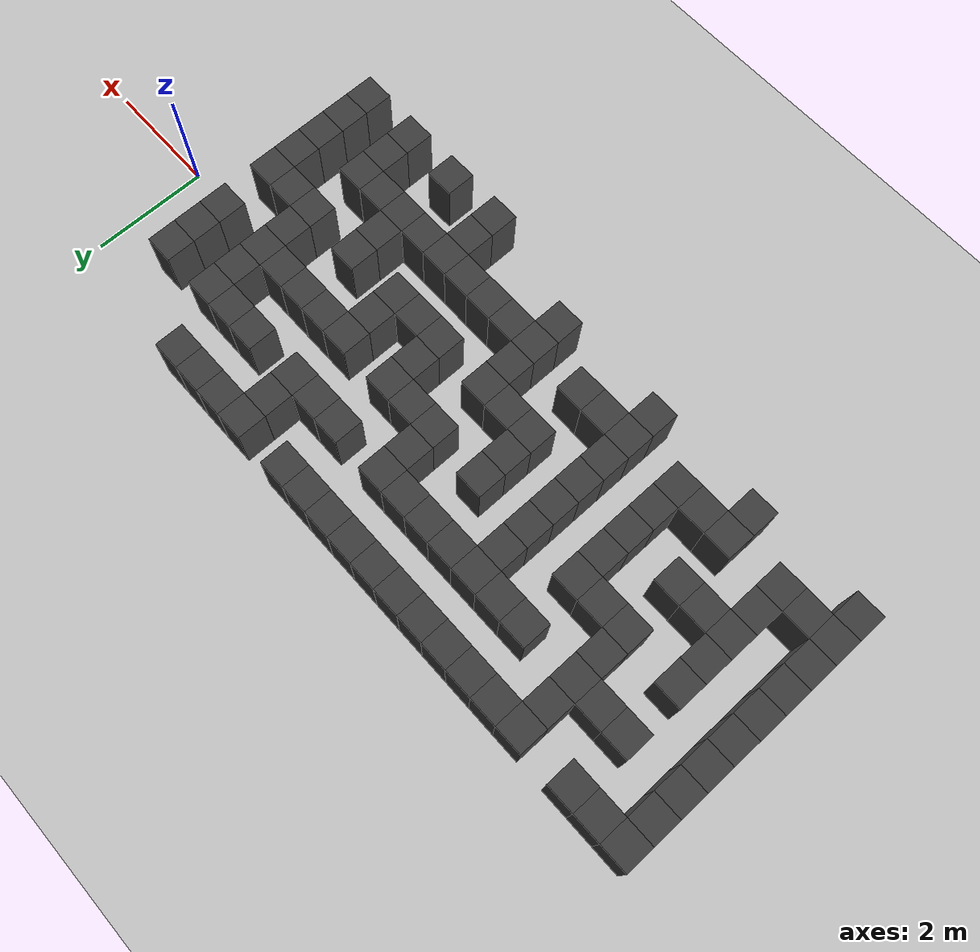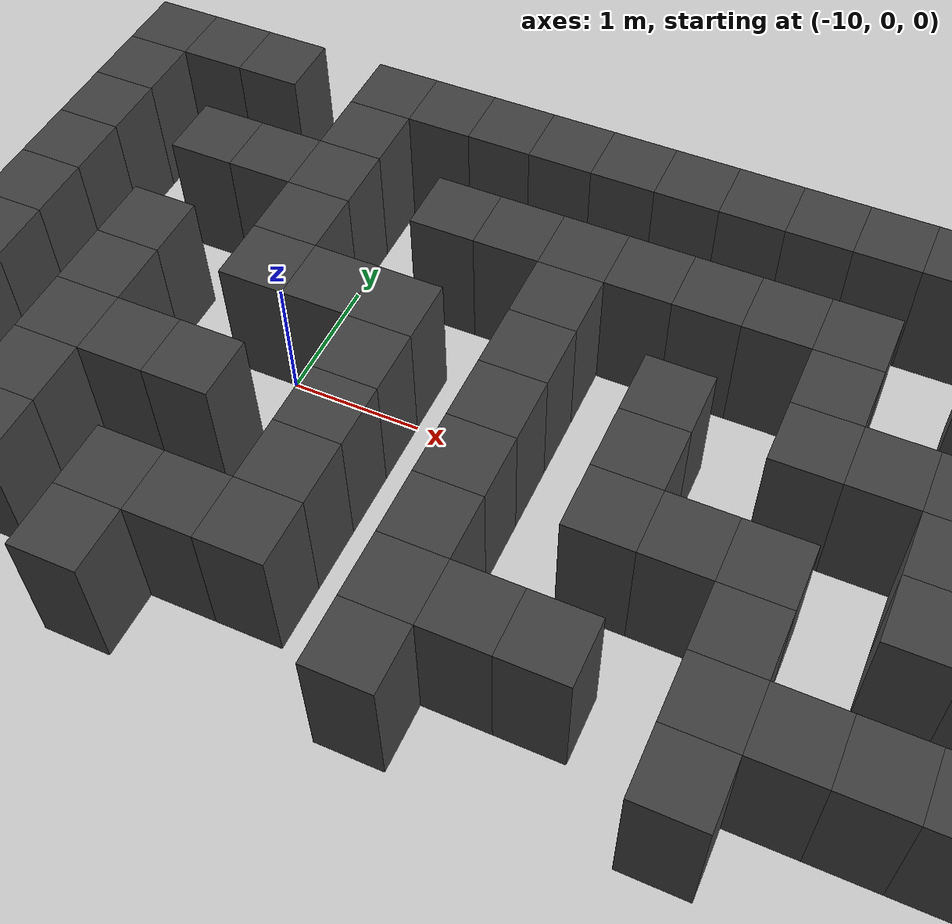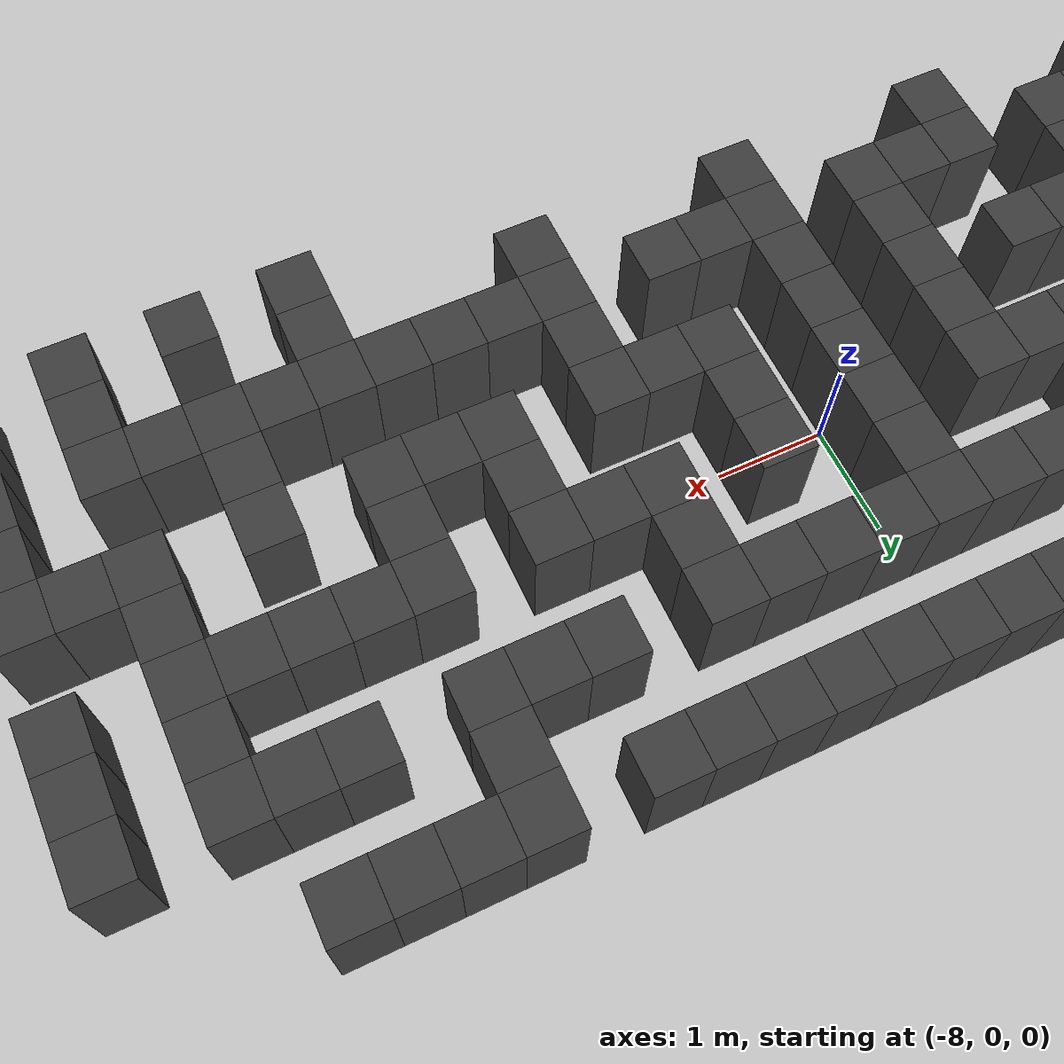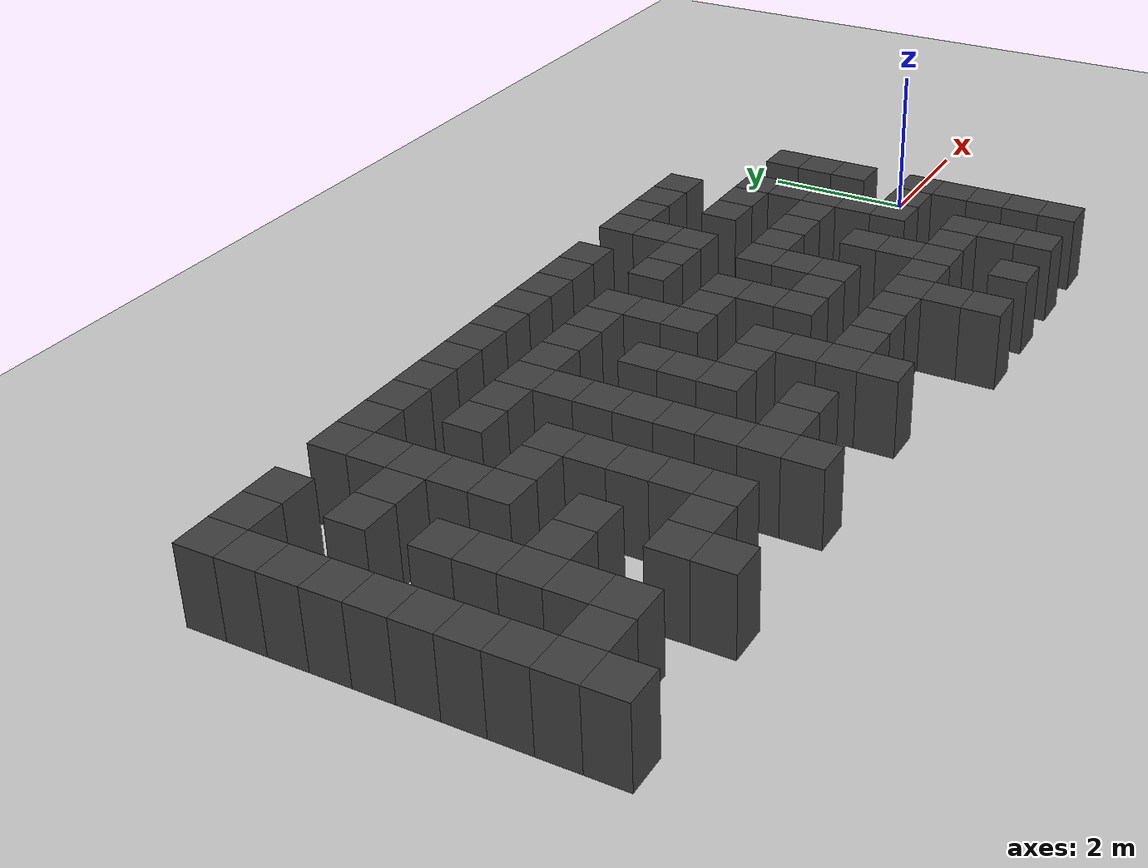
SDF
<sdf version="1.7">
 <world name="map_19815">
  <model name="ground_plane">
   <static>true</static>
   <link name="link">
    <collision name="collision">
     <geometry><plane><normal>0 0 1</normal><size>200 200</size></plane></geometry>
    </collision>
    <visual name="visual">
     <geometry><plane><normal>0 0 1</normal><size>200 200</size></plane></geometry>
     <material><ambient>0.8 0.8 0.8 1</ambient><diffuse>0.8 0.8 0.8 1</diffuse></material>
    </visual>
   </link>
  </model>
  <model name="maze_environment">
   <static>true</static>
   <link name="wall_522">
    <pose>-12.250 2.250 0.500 0 0 0</pose>
    <collision name="col"><geometry><box><size>0.5 0.5 1.0</size></box></geometry></collision>
    <visual name="vis">
     <geometry><box><size>0.5 0.5 1.0</size></box></geometry>
     <material><ambient>0.15 0.15 0.15 1</ambient><diffuse>0.25 0.25 0.25 1</diffuse></material>
    </visual>
   </link>
   <link name="wall_523">
    <pose>-11.750 2.250 0.500 0 0 0</pose>
    <collision name="col"><geometry><box><size>0.5 0.5 1.0</size></box></geometry></collision>
    <visual name="vis">
     <geometry><box><size>0.5 0.5 1.0</size></box></geometry>
     <material><ambient>0.15 0.15 0.15 1</ambient><diffuse>0.25 0.25 0.25 1</diffuse></material>
    </visual>
   </link>
   <link name="wall_524">
    <pose>-11.250 2.250 0.500 0 0 0</pose>
    <collision name="col"><geometry><box><size>0.5 0.5 1.0</size></box></geometry></collision>
    <visual name="vis">
     <geometry><box><size>0.5 0.5 1.0</size></box></geometry>
     <material><ambient>0.15 0.15 0.15 1</ambient><diffuse>0.25 0.25 0.25 1</diffuse></material>
    </visual>
   </link>
   <link name="wall_525">
    <pose>-10.250 2.250 0.500 0 0 0</pose>
    <collision name="col"><geometry><box><size>0.5 0.5 1.0</size></box></geometry></collision>
    <visual name="vis">
     <geometry><box><size>0.5 0.5 1.0</size></box></geometry>
     <material><ambient>0.15 0.15 0.15 1</ambient><diffuse>0.25 0.25 0.25 1</diffuse></material>
    </visual>
   </link>
   <link name="wall_526">
    <pose>-9.750 2.250 0.500 0 0 0</pose>
    <collision name="col"><geometry><box><size>0.5 0.5 1.0</size></box></geometry></collision>
    <visual name="vis">
     <geometry><box><size>0.5 0.5 1.0</size></box></geometry>
     <material><ambient>0.15 0.15 0.15 1</ambient><diffuse>0.25 0.25 0.25 1</diffuse></material>
    </visual>
   </link>
   <link name="wall_527">
    <pose>-9.250 2.250 0.500 0 0 0</pose>
    <collision name="col"><geometry><box><size>0.5 0.5 1.0</size></box></geometry></collision>
    <visual name="vis">
     <geometry><box><size>0.5 0.5 1.0</size></box></geometry>
     <material><ambient>0.15 0.15 0.15 1</ambient><diffuse>0.25 0.25 0.25 1</diffuse></material>
    </visual>
   </link>
   <link name="wall_528">
    <pose>-8.750 2.250 0.500 0 0 0</pose>
    <collision name="col"><geometry><box><size>0.5 0.5 1.0</size></box></geometry></collision>
    <visual name="vis">
     <geometry><box><size>0.5 0.5 1.0</size></box></geometry>
     <material><ambient>0.15 0.15 0.15 1</ambient><diffuse>0.25 0.25 0.25 1</diffuse></material>
    </visual>
   </link>
   <link name="wall_529">
    <pose>-8.250 2.250 0.500 0 0 0</pose>
    <collision name="col"><geometry><box><size>0.5 0.5 1.0</size></box></geometry></collision>
    <visual name="vis">
     <geometry><box><size>0.5 0.5 1.0</size></box></geometry>
     <material><ambient>0.15 0.15 0.15 1</ambient><diffuse>0.25 0.25 0.25 1</diffuse></material>
    </visual>
   </link>
   <link name="wall_530">
    <pose>-7.750 2.250 0.500 0 0 0</pose>
    <collision name="col"><geometry><box><size>0.5 0.5 1.0</size></box></geometry></collision>
    <visual name="vis">
     <geometry><box><size>0.5 0.5 1.0</size></box></geometry>
     <material><ambient>0.15 0.15 0.15 1</ambient><diffuse>0.25 0.25 0.25 1</diffuse></material>
    </visual>
   </link>
   <link name="wall_531">
    <pose>-7.250 2.250 0.500 0 0 0</pose>
    <collision name="col"><geometry><box><size>0.5 0.5 1.0</size></box></geometry></collision>
    <visual name="vis">
     <geometry><box><size>0.5 0.5 1.0</size></box></geometry>
     <material><ambient>0.15 0.15 0.15 1</ambient><diffuse>0.25 0.25 0.25 1</diffuse></material>
    </visual>
   </link>
   <link name="wall_532">
    <pose>-6.750 2.250 0.500 0 0 0</pose>
    <collision name="col"><geometry><box><size>0.5 0.5 1.0</size></box></geometry></collision>
    <visual name="vis">
     <geometry><box><size>0.5 0.5 1.0</size></box></geometry>
     <material><ambient>0.15 0.15 0.15 1</ambient><diffuse>0.25 0.25 0.25 1</diffuse></material>
    </visual>
   </link>
   <link name="wall_533">
    <pose>-6.250 2.250 0.500 0 0 0</pose>
    <collision name="col"><geometry><box><size>0.5 0.5 1.0</size></box></geometry></collision>
    <visual name="vis">
     <geometry><box><size>0.5 0.5 1.0</size></box></geometry>
     <material><ambient>0.15 0.15 0.15 1</ambient><diffuse>0.25 0.25 0.25 1</diffuse></material>
    </visual>
   </link>
   <link name="wall_534">
    <pose>-5.750 2.250 0.500 0 0 0</pose>
    <collision name="col"><geometry><box><size>0.5 0.5 1.0</size></box></geometry></collision>
    <visual name="vis">
     <geometry><box><size>0.5 0.5 1.0</size></box></geometry>
     <material><ambient>0.15 0.15 0.15 1</ambient><diffuse>0.25 0.25 0.25 1</diffuse></material>
    </visual>
   </link>
   <link name="wall_535">
    <pose>-5.250 2.250 0.500 0 0 0</pose>
    <collision name="col"><geometry><box><size>0.5 0.5 1.0</size></box></geometry></collision>
    <visual name="vis">
     <geometry><box><size>0.5 0.5 1.0</size></box></geometry>
     <material><ambient>0.15 0.15 0.15 1</ambient><diffuse>0.25 0.25 0.25 1</diffuse></material>
    </visual>
   </link>
   <link name="wall_536">
    <pose>-4.250 2.250 0.500 0 0 0</pose>
    <collision name="col"><geometry><box><size>0.5 0.5 1.0</size></box></geometry></collision>
    <visual name="vis">
     <geometry><box><size>0.5 0.5 1.0</size></box></geometry>
     <material><ambient>0.15 0.15 0.15 1</ambient><diffuse>0.25 0.25 0.25 1</diffuse></material>
    </visual>
   </link>
   <link name="wall_537">
    <pose>-3.750 2.250 0.500 0 0 0</pose>
    <collision name="col"><geometry><box><size>0.5 0.5 1.0</size></box></geometry></collision>
    <visual name="vis">
     <geometry><box><size>0.5 0.5 1.0</size></box></geometry>
     <material><ambient>0.15 0.15 0.15 1</ambient><diffuse>0.25 0.25 0.25 1</diffuse></material>
    </visual>
   </link>
   <link name="wall_538">
    <pose>-3.250 2.250 0.500 0 0 0</pose>
    <collision name="col"><geometry><box><size>0.5 0.5 1.0</size></box></geometry></collision>
    <visual name="vis">
     <geometry><box><size>0.5 0.5 1.0</size></box></geometry>
     <material><ambient>0.15 0.15 0.15 1</ambient><diffuse>0.25 0.25 0.25 1</diffuse></material>
    </visual>
   </link>
   <link name="wall_539">
    <pose>-2.750 2.250 0.500 0 0 0</pose>
    <collision name="col"><geometry><box><size>0.5 0.5 1.0</size></box></geometry></collision>
    <visual name="vis">
     <geometry><box><size>0.5 0.5 1.0</size></box></geometry>
     <material><ambient>0.15 0.15 0.15 1</ambient><diffuse>0.25 0.25 0.25 1</diffuse></material>
    </visual>
   </link>
   <link name="wall_563">
    <pose>-12.250 1.750 0.500 0 0 0</pose>
    <collision name="col"><geometry><box><size>0.5 0.5 1.0</size></box></geometry></collision>
    <visual name="vis">
     <geometry><box><size>0.5 0.5 1.0</size></box></geometry>
     <material><ambient>0.15 0.15 0.15 1</ambient><diffuse>0.25 0.25 0.25 1</diffuse></material>
    </visual>
   </link>
   <link name="wall_564">
    <pose>-10.250 1.750 0.500 0 0 0</pose>
    <collision name="col"><geometry><box><size>0.5 0.5 1.0</size></box></geometry></collision>
    <visual name="vis">
     <geometry><box><size>0.5 0.5 1.0</size></box></geometry>
     <material><ambient>0.15 0.15 0.15 1</ambient><diffuse>0.25 0.25 0.25 1</diffuse></material>
    </visual>
   </link>
   <link name="wall_565">
    <pose>-4.250 1.750 0.500 0 0 0</pose>
    <collision name="col"><geometry><box><size>0.5 0.5 1.0</size></box></geometry></collision>
    <visual name="vis">
     <geometry><box><size>0.5 0.5 1.0</size></box></geometry>
     <material><ambient>0.15 0.15 0.15 1</ambient><diffuse>0.25 0.25 0.25 1</diffuse></material>
    </visual>
   </link>
   <link name="wall_574">
    <pose>-12.250 1.250 0.500 0 0 0</pose>
    <collision name="col"><geometry><box><size>0.5 0.5 1.0</size></box></geometry></collision>
    <visual name="vis">
     <geometry><box><size>0.5 0.5 1.0</size></box></geometry>
     <material><ambient>0.15 0.15 0.15 1</ambient><diffuse>0.25 0.25 0.25 1</diffuse></material>
    </visual>
   </link>
   <link name="wall_575">
    <pose>-11.250 1.250 0.500 0 0 0</pose>
    <collision name="col"><geometry><box><size>0.5 0.5 1.0</size></box></geometry></collision>
    <visual name="vis">
     <geometry><box><size>0.5 0.5 1.0</size></box></geometry>
     <material><ambient>0.15 0.15 0.15 1</ambient><diffuse>0.25 0.25 0.25 1</diffuse></material>
    </visual>
   </link>
   <link name="wall_576">
    <pose>-10.750 1.250 0.500 0 0 0</pose>
    <collision name="col"><geometry><box><size>0.5 0.5 1.0</size></box></geometry></collision>
    <visual name="vis">
     <geometry><box><size>0.5 0.5 1.0</size></box></geometry>
     <material><ambient>0.15 0.15 0.15 1</ambient><diffuse>0.25 0.25 0.25 1</diffuse></material>
    </visual>
   </link>
   <link name="wall_577">
    <pose>-10.250 1.250 0.500 0 0 0</pose>
    <collision name="col"><geometry><box><size>0.5 0.5 1.0</size></box></geometry></collision>
    <visual name="vis">
     <geometry><box><size>0.5 0.5 1.0</size></box></geometry>
     <material><ambient>0.15 0.15 0.15 1</ambient><diffuse>0.25 0.25 0.25 1</diffuse></material>
    </visual>
   </link>
   <link name="wall_578">
    <pose>-9.250 1.250 0.500 0 0 0</pose>
    <collision name="col"><geometry><box><size>0.5 0.5 1.0</size></box></geometry></collision>
    <visual name="vis">
     <geometry><box><size>0.5 0.5 1.0</size></box></geometry>
     <material><ambient>0.15 0.15 0.15 1</ambient><diffuse>0.25 0.25 0.25 1</diffuse></material>
    </visual>
   </link>
   <link name="wall_579">
    <pose>-8.750 1.250 0.500 0 0 0</pose>
    <collision name="col"><geometry><box><size>0.5 0.5 1.0</size></box></geometry></collision>
    <visual name="vis">
     <geometry><box><size>0.5 0.5 1.0</size></box></geometry>
     <material><ambient>0.15 0.15 0.15 1</ambient><diffuse>0.25 0.25 0.25 1</diffuse></material>
    </visual>
   </link>
   <link name="wall_580">
    <pose>-8.250 1.250 0.500 0 0 0</pose>
    <collision name="col"><geometry><box><size>0.5 0.5 1.0</size></box></geometry></collision>
    <visual name="vis">
     <geometry><box><size>0.5 0.5 1.0</size></box></geometry>
     <material><ambient>0.15 0.15 0.15 1</ambient><diffuse>0.25 0.25 0.25 1</diffuse></material>
    </visual>
   </link>
   <link name="wall_581">
    <pose>-7.750 1.250 0.500 0 0 0</pose>
    <collision name="col"><geometry><box><size>0.5 0.5 1.0</size></box></geometry></collision>
    <visual name="vis">
     <geometry><box><size>0.5 0.5 1.0</size></box></geometry>
     <material><ambient>0.15 0.15 0.15 1</ambient><diffuse>0.25 0.25 0.25 1</diffuse></material>
    </visual>
   </link>
   <link name="wall_582">
    <pose>-7.250 1.250 0.500 0 0 0</pose>
    <collision name="col"><geometry><box><size>0.5 0.5 1.0</size></box></geometry></collision>
    <visual name="vis">
     <geometry><box><size>0.5 0.5 1.0</size></box></geometry>
     <material><ambient>0.15 0.15 0.15 1</ambient><diffuse>0.25 0.25 0.25 1</diffuse></material>
    </visual>
   </link>
   <link name="wall_583">
    <pose>-6.750 1.250 0.500 0 0 0</pose>
    <collision name="col"><geometry><box><size>0.5 0.5 1.0</size></box></geometry></collision>
    <visual name="vis">
     <geometry><box><size>0.5 0.5 1.0</size></box></geometry>
     <material><ambient>0.15 0.15 0.15 1</ambient><diffuse>0.25 0.25 0.25 1</diffuse></material>
    </visual>
   </link>
   <link name="wall_584">
    <pose>-6.250 1.250 0.500 0 0 0</pose>
    <collision name="col"><geometry><box><size>0.5 0.5 1.0</size></box></geometry></collision>
    <visual name="vis">
     <geometry><box><size>0.5 0.5 1.0</size></box></geometry>
     <material><ambient>0.15 0.15 0.15 1</ambient><diffuse>0.25 0.25 0.25 1</diffuse></material>
    </visual>
   </link>
   <link name="wall_585">
    <pose>-5.250 1.250 0.500 0 0 0</pose>
    <collision name="col"><geometry><box><size>0.5 0.5 1.0</size></box></geometry></collision>
    <visual name="vis">
     <geometry><box><size>0.5 0.5 1.0</size></box></geometry>
     <material><ambient>0.15 0.15 0.15 1</ambient><diffuse>0.25 0.25 0.25 1</diffuse></material>
    </visual>
   </link>
   <link name="wall_586">
    <pose>-4.750 1.250 0.500 0 0 0</pose>
    <collision name="col"><geometry><box><size>0.5 0.5 1.0</size></box></geometry></collision>
    <visual name="vis">
     <geometry><box><size>0.5 0.5 1.0</size></box></geometry>
     <material><ambient>0.15 0.15 0.15 1</ambient><diffuse>0.25 0.25 0.25 1</diffuse></material>
    </visual>
   </link>
   <link name="wall_587">
    <pose>-4.250 1.250 0.500 0 0 0</pose>
    <collision name="col"><geometry><box><size>0.5 0.5 1.0</size></box></geometry></collision>
    <visual name="vis">
     <geometry><box><size>0.5 0.5 1.0</size></box></geometry>
     <material><ambient>0.15 0.15 0.15 1</ambient><diffuse>0.25 0.25 0.25 1</diffuse></material>
    </visual>
   </link>
   <link name="wall_588">
    <pose>-3.250 1.250 0.500 0 0 0</pose>
    <collision name="col"><geometry><box><size>0.5 0.5 1.0</size></box></geometry></collision>
    <visual name="vis">
     <geometry><box><size>0.5 0.5 1.0</size></box></geometry>
     <material><ambient>0.15 0.15 0.15 1</ambient><diffuse>0.25 0.25 0.25 1</diffuse></material>
    </visual>
   </link>
   <link name="wall_589">
    <pose>-2.750 1.250 0.500 0 0 0</pose>
    <collision name="col"><geometry><box><size>0.5 0.5 1.0</size></box></geometry></collision>
    <visual name="vis">
     <geometry><box><size>0.5 0.5 1.0</size></box></geometry>
     <material><ambient>0.15 0.15 0.15 1</ambient><diffuse>0.25 0.25 0.25 1</diffuse></material>
    </visual>
   </link>
   <link name="wall_590">
    <pose>-2.250 1.250 0.500 0 0 0</pose>
    <collision name="col"><geometry><box><size>0.5 0.5 1.0</size></box></geometry></collision>
    <visual name="vis">
     <geometry><box><size>0.5 0.5 1.0</size></box></geometry>
     <material><ambient>0.15 0.15 0.15 1</ambient><diffuse>0.25 0.25 0.25 1</diffuse></material>
    </visual>
   </link>
   <link name="wall_591">
    <pose>-1.250 1.250 0.500 0 0 0</pose>
    <collision name="col"><geometry><box><size>0.5 0.5 1.0</size></box></geometry></collision>
    <visual name="vis">
     <geometry><box><size>0.5 0.5 1.0</size></box></geometry>
     <material><ambient>0.15 0.15 0.15 1</ambient><diffuse>0.25 0.25 0.25 1</diffuse></material>
    </visual>
   </link>
   <link name="wall_615">
    <pose>-12.250 0.750 0.500 0 0 0</pose>
    <collision name="col"><geometry><box><size>0.5 0.5 1.0</size></box></geometry></collision>
    <visual name="vis">
     <geometry><box><size>0.5 0.5 1.0</size></box></geometry>
     <material><ambient>0.15 0.15 0.15 1</ambient><diffuse>0.25 0.25 0.25 1</diffuse></material>
    </visual>
   </link>
   <link name="wall_616">
    <pose>-10.250 0.750 0.500 0 0 0</pose>
    <collision name="col"><geometry><box><size>0.5 0.5 1.0</size></box></geometry></collision>
    <visual name="vis">
     <geometry><box><size>0.5 0.5 1.0</size></box></geometry>
     <material><ambient>0.15 0.15 0.15 1</ambient><diffuse>0.25 0.25 0.25 1</diffuse></material>
    </visual>
   </link>
   <link name="wall_617">
    <pose>-8.250 0.750 0.500 0 0 0</pose>
    <collision name="col"><geometry><box><size>0.5 0.5 1.0</size></box></geometry></collision>
    <visual name="vis">
     <geometry><box><size>0.5 0.5 1.0</size></box></geometry>
     <material><ambient>0.15 0.15 0.15 1</ambient><diffuse>0.25 0.25 0.25 1</diffuse></material>
    </visual>
   </link>
   <link name="wall_618">
    <pose>-6.250 0.750 0.500 0 0 0</pose>
    <collision name="col"><geometry><box><size>0.5 0.5 1.0</size></box></geometry></collision>
    <visual name="vis">
     <geometry><box><size>0.5 0.5 1.0</size></box></geometry>
     <material><ambient>0.15 0.15 0.15 1</ambient><diffuse>0.25 0.25 0.25 1</diffuse></material>
    </visual>
   </link>
   <link name="wall_619">
    <pose>-2.250 0.750 0.500 0 0 0</pose>
    <collision name="col"><geometry><box><size>0.5 0.5 1.0</size></box></geometry></collision>
    <visual name="vis">
     <geometry><box><size>0.5 0.5 1.0</size></box></geometry>
     <material><ambient>0.15 0.15 0.15 1</ambient><diffuse>0.25 0.25 0.25 1</diffuse></material>
    </visual>
   </link>
   <link name="wall_620">
    <pose>-1.250 0.750 0.500 0 0 0</pose>
    <collision name="col"><geometry><box><size>0.5 0.5 1.0</size></box></geometry></collision>
    <visual name="vis">
     <geometry><box><size>0.5 0.5 1.0</size></box></geometry>
     <material><ambient>0.15 0.15 0.15 1</ambient><diffuse>0.25 0.25 0.25 1</diffuse></material>
    </visual>
   </link>
   <link name="wall_626">
    <pose>-12.250 0.250 0.500 0 0 0</pose>
    <collision name="col"><geometry><box><size>0.5 0.5 1.0</size></box></geometry></collision>
    <visual name="vis">
     <geometry><box><size>0.5 0.5 1.0</size></box></geometry>
     <material><ambient>0.15 0.15 0.15 1</ambient><diffuse>0.25 0.25 0.25 1</diffuse></material>
    </visual>
   </link>
   <link name="wall_627">
    <pose>-11.250 0.250 0.500 0 0 0</pose>
    <collision name="col"><geometry><box><size>0.5 0.5 1.0</size></box></geometry></collision>
    <visual name="vis">
     <geometry><box><size>0.5 0.5 1.0</size></box></geometry>
     <material><ambient>0.15 0.15 0.15 1</ambient><diffuse>0.25 0.25 0.25 1</diffuse></material>
    </visual>
   </link>
   <link name="wall_628">
    <pose>-10.250 0.250 0.500 0 0 0</pose>
    <collision name="col"><geometry><box><size>0.5 0.5 1.0</size></box></geometry></collision>
    <visual name="vis">
     <geometry><box><size>0.5 0.5 1.0</size></box></geometry>
     <material><ambient>0.15 0.15 0.15 1</ambient><diffuse>0.25 0.25 0.25 1</diffuse></material>
    </visual>
   </link>
   <link name="wall_629">
    <pose>-9.750 0.250 0.500 0 0 0</pose>
    <collision name="col"><geometry><box><size>0.5 0.5 1.0</size></box></geometry></collision>
    <visual name="vis">
     <geometry><box><size>0.5 0.5 1.0</size></box></geometry>
     <material><ambient>0.15 0.15 0.15 1</ambient><diffuse>0.25 0.25 0.25 1</diffuse></material>
    </visual>
   </link>
   <link name="wall_630">
    <pose>-9.250 0.250 0.500 0 0 0</pose>
    <collision name="col"><geometry><box><size>0.5 0.5 1.0</size></box></geometry></collision>
    <visual name="vis">
     <geometry><box><size>0.5 0.5 1.0</size></box></geometry>
     <material><ambient>0.15 0.15 0.15 1</ambient><diffuse>0.25 0.25 0.25 1</diffuse></material>
    </visual>
   </link>
   <link name="wall_631">
    <pose>-8.250 0.250 0.500 0 0 0</pose>
    <collision name="col"><geometry><box><size>0.5 0.5 1.0</size></box></geometry></collision>
    <visual name="vis">
     <geometry><box><size>0.5 0.5 1.0</size></box></geometry>
     <material><ambient>0.15 0.15 0.15 1</ambient><diffuse>0.25 0.25 0.25 1</diffuse></material>
    </visual>
   </link>
   <link name="wall_632">
    <pose>-7.250 0.250 0.500 0 0 0</pose>
    <collision name="col"><geometry><box><size>0.5 0.5 1.0</size></box></geometry></collision>
    <visual name="vis">
     <geometry><box><size>0.5 0.5 1.0</size></box></geometry>
     <material><ambient>0.15 0.15 0.15 1</ambient><diffuse>0.25 0.25 0.25 1</diffuse></material>
    </visual>
   </link>
   <link name="wall_633">
    <pose>-6.250 0.250 0.500 0 0 0</pose>
    <collision name="col"><geometry><box><size>0.5 0.5 1.0</size></box></geometry></collision>
    <visual name="vis">
     <geometry><box><size>0.5 0.5 1.0</size></box></geometry>
     <material><ambient>0.15 0.15 0.15 1</ambient><diffuse>0.25 0.25 0.25 1</diffuse></material>
    </visual>
   </link>
   <link name="wall_634">
    <pose>-5.750 0.250 0.500 0 0 0</pose>
    <collision name="col"><geometry><box><size>0.5 0.5 1.0</size></box></geometry></collision>
    <visual name="vis">
     <geometry><box><size>0.5 0.5 1.0</size></box></geometry>
     <material><ambient>0.15 0.15 0.15 1</ambient><diffuse>0.25 0.25 0.25 1</diffuse></material>
    </visual>
   </link>
   <link name="wall_635">
    <pose>-5.250 0.250 0.500 0 0 0</pose>
    <collision name="col"><geometry><box><size>0.5 0.5 1.0</size></box></geometry></collision>
    <visual name="vis">
     <geometry><box><size>0.5 0.5 1.0</size></box></geometry>
     <material><ambient>0.15 0.15 0.15 1</ambient><diffuse>0.25 0.25 0.25 1</diffuse></material>
    </visual>
   </link>
   <link name="wall_636">
    <pose>-4.250 0.250 0.500 0 0 0</pose>
    <collision name="col"><geometry><box><size>0.5 0.5 1.0</size></box></geometry></collision>
    <visual name="vis">
     <geometry><box><size>0.5 0.5 1.0</size></box></geometry>
     <material><ambient>0.15 0.15 0.15 1</ambient><diffuse>0.25 0.25 0.25 1</diffuse></material>
    </visual>
   </link>
   <link name="wall_637">
    <pose>-3.750 0.250 0.500 0 0 0</pose>
    <collision name="col"><geometry><box><size>0.5 0.5 1.0</size></box></geometry></collision>
    <visual name="vis">
     <geometry><box><size>0.5 0.5 1.0</size></box></geometry>
     <material><ambient>0.15 0.15 0.15 1</ambient><diffuse>0.25 0.25 0.25 1</diffuse></material>
    </visual>
   </link>
   <link name="wall_638">
    <pose>-3.250 0.250 0.500 0 0 0</pose>
    <collision name="col"><geometry><box><size>0.5 0.5 1.0</size></box></geometry></collision>
    <visual name="vis">
     <geometry><box><size>0.5 0.5 1.0</size></box></geometry>
     <material><ambient>0.15 0.15 0.15 1</ambient><diffuse>0.25 0.25 0.25 1</diffuse></material>
    </visual>
   </link>
   <link name="wall_639">
    <pose>-2.750 0.250 0.500 0 0 0</pose>
    <collision name="col"><geometry><box><size>0.5 0.5 1.0</size></box></geometry></collision>
    <visual name="vis">
     <geometry><box><size>0.5 0.5 1.0</size></box></geometry>
     <material><ambient>0.15 0.15 0.15 1</ambient><diffuse>0.25 0.25 0.25 1</diffuse></material>
    </visual>
   </link>
   <link name="wall_640">
    <pose>-2.250 0.250 0.500 0 0 0</pose>
    <collision name="col"><geometry><box><size>0.5 0.5 1.0</size></box></geometry></collision>
    <visual name="vis">
     <geometry><box><size>0.5 0.5 1.0</size></box></geometry>
     <material><ambient>0.15 0.15 0.15 1</ambient><diffuse>0.25 0.25 0.25 1</diffuse></material>
    </visual>
   </link>
   <link name="wall_641">
    <pose>-1.250 0.250 0.500 0 0 0</pose>
    <collision name="col"><geometry><box><size>0.5 0.5 1.0</size></box></geometry></collision>
    <visual name="vis">
     <geometry><box><size>0.5 0.5 1.0</size></box></geometry>
     <material><ambient>0.15 0.15 0.15 1</ambient><diffuse>0.25 0.25 0.25 1</diffuse></material>
    </visual>
   </link>
   <link name="wall_662">
    <pose>-12.250 -0.250 0.500 0 0 0</pose>
    <collision name="col"><geometry><box><size>0.5 0.5 1.0</size></box></geometry></collision>
    <visual name="vis">
     <geometry><box><size>0.5 0.5 1.0</size></box></geometry>
     <material><ambient>0.15 0.15 0.15 1</ambient><diffuse>0.25 0.25 0.25 1</diffuse></material>
    </visual>
   </link>
   <link name="wall_663">
    <pose>-11.250 -0.250 0.500 0 0 0</pose>
    <collision name="col"><geometry><box><size>0.5 0.5 1.0</size></box></geometry></collision>
    <visual name="vis">
     <geometry><box><size>0.5 0.5 1.0</size></box></geometry>
     <material><ambient>0.15 0.15 0.15 1</ambient><diffuse>0.25 0.25 0.25 1</diffuse></material>
    </visual>
   </link>
   <link name="wall_664">
    <pose>-9.250 -0.250 0.500 0 0 0</pose>
    <collision name="col"><geometry><box><size>0.5 0.5 1.0</size></box></geometry></collision>
    <visual name="vis">
     <geometry><box><size>0.5 0.5 1.0</size></box></geometry>
     <material><ambient>0.15 0.15 0.15 1</ambient><diffuse>0.25 0.25 0.25 1</diffuse></material>
    </visual>
   </link>
   <link name="wall_665">
    <pose>-8.250 -0.250 0.500 0 0 0</pose>
    <collision name="col"><geometry><box><size>0.5 0.5 1.0</size></box></geometry></collision>
    <visual name="vis">
     <geometry><box><size>0.5 0.5 1.0</size></box></geometry>
     <material><ambient>0.15 0.15 0.15 1</ambient><diffuse>0.25 0.25 0.25 1</diffuse></material>
    </visual>
   </link>
   <link name="wall_666">
    <pose>-7.250 -0.250 0.500 0 0 0</pose>
    <collision name="col"><geometry><box><size>0.5 0.5 1.0</size></box></geometry></collision>
    <visual name="vis">
     <geometry><box><size>0.5 0.5 1.0</size></box></geometry>
     <material><ambient>0.15 0.15 0.15 1</ambient><diffuse>0.25 0.25 0.25 1</diffuse></material>
    </visual>
   </link>
   <link name="wall_667">
    <pose>-5.250 -0.250 0.500 0 0 0</pose>
    <collision name="col"><geometry><box><size>0.5 0.5 1.0</size></box></geometry></collision>
    <visual name="vis">
     <geometry><box><size>0.5 0.5 1.0</size></box></geometry>
     <material><ambient>0.15 0.15 0.15 1</ambient><diffuse>0.25 0.25 0.25 1</diffuse></material>
    </visual>
   </link>
   <link name="wall_668">
    <pose>-4.250 -0.250 0.500 0 0 0</pose>
    <collision name="col"><geometry><box><size>0.5 0.5 1.0</size></box></geometry></collision>
    <visual name="vis">
     <geometry><box><size>0.5 0.5 1.0</size></box></geometry>
     <material><ambient>0.15 0.15 0.15 1</ambient><diffuse>0.25 0.25 0.25 1</diffuse></material>
    </visual>
   </link>
   <link name="wall_669">
    <pose>-2.250 -0.250 0.500 0 0 0</pose>
    <collision name="col"><geometry><box><size>0.5 0.5 1.0</size></box></geometry></collision>
    <visual name="vis">
     <geometry><box><size>0.5 0.5 1.0</size></box></geometry>
     <material><ambient>0.15 0.15 0.15 1</ambient><diffuse>0.25 0.25 0.25 1</diffuse></material>
    </visual>
   </link>
   <link name="wall_677">
    <pose>-12.250 -0.750 0.500 0 0 0</pose>
    <collision name="col"><geometry><box><size>0.5 0.5 1.0</size></box></geometry></collision>
    <visual name="vis">
     <geometry><box><size>0.5 0.5 1.0</size></box></geometry>
     <material><ambient>0.15 0.15 0.15 1</ambient><diffuse>0.25 0.25 0.25 1</diffuse></material>
    </visual>
   </link>
   <link name="wall_678">
    <pose>-11.250 -0.750 0.500 0 0 0</pose>
    <collision name="col"><geometry><box><size>0.5 0.5 1.0</size></box></geometry></collision>
    <visual name="vis">
     <geometry><box><size>0.5 0.5 1.0</size></box></geometry>
     <material><ambient>0.15 0.15 0.15 1</ambient><diffuse>0.25 0.25 0.25 1</diffuse></material>
    </visual>
   </link>
   <link name="wall_679">
    <pose>-10.750 -0.750 0.500 0 0 0</pose>
    <collision name="col"><geometry><box><size>0.5 0.5 1.0</size></box></geometry></collision>
    <visual name="vis">
     <geometry><box><size>0.5 0.5 1.0</size></box></geometry>
     <material><ambient>0.15 0.15 0.15 1</ambient><diffuse>0.25 0.25 0.25 1</diffuse></material>
    </visual>
   </link>
   <link name="wall_680">
    <pose>-10.250 -0.750 0.500 0 0 0</pose>
    <collision name="col"><geometry><box><size>0.5 0.5 1.0</size></box></geometry></collision>
    <visual name="vis">
     <geometry><box><size>0.5 0.5 1.0</size></box></geometry>
     <material><ambient>0.15 0.15 0.15 1</ambient><diffuse>0.25 0.25 0.25 1</diffuse></material>
    </visual>
   </link>
   <link name="wall_681">
    <pose>-9.250 -0.750 0.500 0 0 0</pose>
    <collision name="col"><geometry><box><size>0.5 0.5 1.0</size></box></geometry></collision>
    <visual name="vis">
     <geometry><box><size>0.5 0.5 1.0</size></box></geometry>
     <material><ambient>0.15 0.15 0.15 1</ambient><diffuse>0.25 0.25 0.25 1</diffuse></material>
    </visual>
   </link>
   <link name="wall_682">
    <pose>-8.250 -0.750 0.500 0 0 0</pose>
    <collision name="col"><geometry><box><size>0.5 0.5 1.0</size></box></geometry></collision>
    <visual name="vis">
     <geometry><box><size>0.5 0.5 1.0</size></box></geometry>
     <material><ambient>0.15 0.15 0.15 1</ambient><diffuse>0.25 0.25 0.25 1</diffuse></material>
    </visual>
   </link>
   <link name="wall_683">
    <pose>-7.250 -0.750 0.500 0 0 0</pose>
    <collision name="col"><geometry><box><size>0.5 0.5 1.0</size></box></geometry></collision>
    <visual name="vis">
     <geometry><box><size>0.5 0.5 1.0</size></box></geometry>
     <material><ambient>0.15 0.15 0.15 1</ambient><diffuse>0.25 0.25 0.25 1</diffuse></material>
    </visual>
   </link>
   <link name="wall_684">
    <pose>-6.750 -0.750 0.500 0 0 0</pose>
    <collision name="col"><geometry><box><size>0.5 0.5 1.0</size></box></geometry></collision>
    <visual name="vis">
     <geometry><box><size>0.5 0.5 1.0</size></box></geometry>
     <material><ambient>0.15 0.15 0.15 1</ambient><diffuse>0.25 0.25 0.25 1</diffuse></material>
    </visual>
   </link>
   <link name="wall_685">
    <pose>-6.250 -0.750 0.500 0 0 0</pose>
    <collision name="col"><geometry><box><size>0.5 0.5 1.0</size></box></geometry></collision>
    <visual name="vis">
     <geometry><box><size>0.5 0.5 1.0</size></box></geometry>
     <material><ambient>0.15 0.15 0.15 1</ambient><diffuse>0.25 0.25 0.25 1</diffuse></material>
    </visual>
   </link>
   <link name="wall_686">
    <pose>-5.250 -0.750 0.500 0 0 0</pose>
    <collision name="col"><geometry><box><size>0.5 0.5 1.0</size></box></geometry></collision>
    <visual name="vis">
     <geometry><box><size>0.5 0.5 1.0</size></box></geometry>
     <material><ambient>0.15 0.15 0.15 1</ambient><diffuse>0.25 0.25 0.25 1</diffuse></material>
    </visual>
   </link>
   <link name="wall_687">
    <pose>-4.750 -0.750 0.500 0 0 0</pose>
    <collision name="col"><geometry><box><size>0.5 0.5 1.0</size></box></geometry></collision>
    <visual name="vis">
     <geometry><box><size>0.5 0.5 1.0</size></box></geometry>
     <material><ambient>0.15 0.15 0.15 1</ambient><diffuse>0.25 0.25 0.25 1</diffuse></material>
    </visual>
   </link>
   <link name="wall_688">
    <pose>-4.250 -0.750 0.500 0 0 0</pose>
    <collision name="col"><geometry><box><size>0.5 0.5 1.0</size></box></geometry></collision>
    <visual name="vis">
     <geometry><box><size>0.5 0.5 1.0</size></box></geometry>
     <material><ambient>0.15 0.15 0.15 1</ambient><diffuse>0.25 0.25 0.25 1</diffuse></material>
    </visual>
   </link>
   <link name="wall_689">
    <pose>-3.250 -0.750 0.500 0 0 0</pose>
    <collision name="col"><geometry><box><size>0.5 0.5 1.0</size></box></geometry></collision>
    <visual name="vis">
     <geometry><box><size>0.5 0.5 1.0</size></box></geometry>
     <material><ambient>0.15 0.15 0.15 1</ambient><diffuse>0.25 0.25 0.25 1</diffuse></material>
    </visual>
   </link>
   <link name="wall_690">
    <pose>-2.250 -0.750 0.500 0 0 0</pose>
    <collision name="col"><geometry><box><size>0.5 0.5 1.0</size></box></geometry></collision>
    <visual name="vis">
     <geometry><box><size>0.5 0.5 1.0</size></box></geometry>
     <material><ambient>0.15 0.15 0.15 1</ambient><diffuse>0.25 0.25 0.25 1</diffuse></material>
    </visual>
   </link>
   <link name="wall_691">
    <pose>-1.750 -0.750 0.500 0 0 0</pose>
    <collision name="col"><geometry><box><size>0.5 0.5 1.0</size></box></geometry></collision>
    <visual name="vis">
     <geometry><box><size>0.5 0.5 1.0</size></box></geometry>
     <material><ambient>0.15 0.15 0.15 1</ambient><diffuse>0.25 0.25 0.25 1</diffuse></material>
    </visual>
   </link>
   <link name="wall_692">
    <pose>-1.250 -0.750 0.500 0 0 0</pose>
    <collision name="col"><geometry><box><size>0.5 0.5 1.0</size></box></geometry></collision>
    <visual name="vis">
     <geometry><box><size>0.5 0.5 1.0</size></box></geometry>
     <material><ambient>0.15 0.15 0.15 1</ambient><diffuse>0.25 0.25 0.25 1</diffuse></material>
    </visual>
   </link>
   <link name="wall_713">
    <pose>-12.250 -1.250 0.500 0 0 0</pose>
    <collision name="col"><geometry><box><size>0.5 0.5 1.0</size></box></geometry></collision>
    <visual name="vis">
     <geometry><box><size>0.5 0.5 1.0</size></box></geometry>
     <material><ambient>0.15 0.15 0.15 1</ambient><diffuse>0.25 0.25 0.25 1</diffuse></material>
    </visual>
   </link>
   <link name="wall_714">
    <pose>-11.250 -1.250 0.500 0 0 0</pose>
    <collision name="col"><geometry><box><size>0.5 0.5 1.0</size></box></geometry></collision>
    <visual name="vis">
     <geometry><box><size>0.5 0.5 1.0</size></box></geometry>
     <material><ambient>0.15 0.15 0.15 1</ambient><diffuse>0.25 0.25 0.25 1</diffuse></material>
    </visual>
   </link>
   <link name="wall_715">
    <pose>-9.250 -1.250 0.500 0 0 0</pose>
    <collision name="col"><geometry><box><size>0.5 0.5 1.0</size></box></geometry></collision>
    <visual name="vis">
     <geometry><box><size>0.5 0.5 1.0</size></box></geometry>
     <material><ambient>0.15 0.15 0.15 1</ambient><diffuse>0.25 0.25 0.25 1</diffuse></material>
    </visual>
   </link>
   <link name="wall_716">
    <pose>-8.250 -1.250 0.500 0 0 0</pose>
    <collision name="col"><geometry><box><size>0.5 0.5 1.0</size></box></geometry></collision>
    <visual name="vis">
     <geometry><box><size>0.5 0.5 1.0</size></box></geometry>
     <material><ambient>0.15 0.15 0.15 1</ambient><diffuse>0.25 0.25 0.25 1</diffuse></material>
    </visual>
   </link>
   <link name="wall_717">
    <pose>-6.250 -1.250 0.500 0 0 0</pose>
    <collision name="col"><geometry><box><size>0.5 0.5 1.0</size></box></geometry></collision>
    <visual name="vis">
     <geometry><box><size>0.5 0.5 1.0</size></box></geometry>
     <material><ambient>0.15 0.15 0.15 1</ambient><diffuse>0.25 0.25 0.25 1</diffuse></material>
    </visual>
   </link>
   <link name="wall_718">
    <pose>-3.250 -1.250 0.500 0 0 0</pose>
    <collision name="col"><geometry><box><size>0.5 0.5 1.0</size></box></geometry></collision>
    <visual name="vis">
     <geometry><box><size>0.5 0.5 1.0</size></box></geometry>
     <material><ambient>0.15 0.15 0.15 1</ambient><diffuse>0.25 0.25 0.25 1</diffuse></material>
    </visual>
   </link>
   <link name="wall_719">
    <pose>-1.250 -1.250 0.500 0 0 0</pose>
    <collision name="col"><geometry><box><size>0.5 0.5 1.0</size></box></geometry></collision>
    <visual name="vis">
     <geometry><box><size>0.5 0.5 1.0</size></box></geometry>
     <material><ambient>0.15 0.15 0.15 1</ambient><diffuse>0.25 0.25 0.25 1</diffuse></material>
    </visual>
   </link>
   <link name="wall_730">
    <pose>-12.250 -1.750 0.500 0 0 0</pose>
    <collision name="col"><geometry><box><size>0.5 0.5 1.0</size></box></geometry></collision>
    <visual name="vis">
     <geometry><box><size>0.5 0.5 1.0</size></box></geometry>
     <material><ambient>0.15 0.15 0.15 1</ambient><diffuse>0.25 0.25 0.25 1</diffuse></material>
    </visual>
   </link>
   <link name="wall_731">
    <pose>-11.750 -1.750 0.500 0 0 0</pose>
    <collision name="col"><geometry><box><size>0.5 0.5 1.0</size></box></geometry></collision>
    <visual name="vis">
     <geometry><box><size>0.5 0.5 1.0</size></box></geometry>
     <material><ambient>0.15 0.15 0.15 1</ambient><diffuse>0.25 0.25 0.25 1</diffuse></material>
    </visual>
   </link>
   <link name="wall_732">
    <pose>-11.250 -1.750 0.500 0 0 0</pose>
    <collision name="col"><geometry><box><size>0.5 0.5 1.0</size></box></geometry></collision>
    <visual name="vis">
     <geometry><box><size>0.5 0.5 1.0</size></box></geometry>
     <material><ambient>0.15 0.15 0.15 1</ambient><diffuse>0.25 0.25 0.25 1</diffuse></material>
    </visual>
   </link>
   <link name="wall_733">
    <pose>-10.250 -1.750 0.500 0 0 0</pose>
    <collision name="col"><geometry><box><size>0.5 0.5 1.0</size></box></geometry></collision>
    <visual name="vis">
     <geometry><box><size>0.5 0.5 1.0</size></box></geometry>
     <material><ambient>0.15 0.15 0.15 1</ambient><diffuse>0.25 0.25 0.25 1</diffuse></material>
    </visual>
   </link>
   <link name="wall_734">
    <pose>-9.750 -1.750 0.500 0 0 0</pose>
    <collision name="col"><geometry><box><size>0.5 0.5 1.0</size></box></geometry></collision>
    <visual name="vis">
     <geometry><box><size>0.5 0.5 1.0</size></box></geometry>
     <material><ambient>0.15 0.15 0.15 1</ambient><diffuse>0.25 0.25 0.25 1</diffuse></material>
    </visual>
   </link>
   <link name="wall_735">
    <pose>-9.250 -1.750 0.500 0 0 0</pose>
    <collision name="col"><geometry><box><size>0.5 0.5 1.0</size></box></geometry></collision>
    <visual name="vis">
     <geometry><box><size>0.5 0.5 1.0</size></box></geometry>
     <material><ambient>0.15 0.15 0.15 1</ambient><diffuse>0.25 0.25 0.25 1</diffuse></material>
    </visual>
   </link>
   <link name="wall_736">
    <pose>-8.250 -1.750 0.500 0 0 0</pose>
    <collision name="col"><geometry><box><size>0.5 0.5 1.0</size></box></geometry></collision>
    <visual name="vis">
     <geometry><box><size>0.5 0.5 1.0</size></box></geometry>
     <material><ambient>0.15 0.15 0.15 1</ambient><diffuse>0.25 0.25 0.25 1</diffuse></material>
    </visual>
   </link>
   <link name="wall_737">
    <pose>-7.750 -1.750 0.500 0 0 0</pose>
    <collision name="col"><geometry><box><size>0.5 0.5 1.0</size></box></geometry></collision>
    <visual name="vis">
     <geometry><box><size>0.5 0.5 1.0</size></box></geometry>
     <material><ambient>0.15 0.15 0.15 1</ambient><diffuse>0.25 0.25 0.25 1</diffuse></material>
    </visual>
   </link>
   <link name="wall_738">
    <pose>-7.250 -1.750 0.500 0 0 0</pose>
    <collision name="col"><geometry><box><size>0.5 0.5 1.0</size></box></geometry></collision>
    <visual name="vis">
     <geometry><box><size>0.5 0.5 1.0</size></box></geometry>
     <material><ambient>0.15 0.15 0.15 1</ambient><diffuse>0.25 0.25 0.25 1</diffuse></material>
    </visual>
   </link>
   <link name="wall_739">
    <pose>-6.250 -1.750 0.500 0 0 0</pose>
    <collision name="col"><geometry><box><size>0.5 0.5 1.0</size></box></geometry></collision>
    <visual name="vis">
     <geometry><box><size>0.5 0.5 1.0</size></box></geometry>
     <material><ambient>0.15 0.15 0.15 1</ambient><diffuse>0.25 0.25 0.25 1</diffuse></material>
    </visual>
   </link>
   <link name="wall_740">
    <pose>-5.750 -1.750 0.500 0 0 0</pose>
    <collision name="col"><geometry><box><size>0.5 0.5 1.0</size></box></geometry></collision>
    <visual name="vis">
     <geometry><box><size>0.5 0.5 1.0</size></box></geometry>
     <material><ambient>0.15 0.15 0.15 1</ambient><diffuse>0.25 0.25 0.25 1</diffuse></material>
    </visual>
   </link>
   <link name="wall_741">
    <pose>-5.250 -1.750 0.500 0 0 0</pose>
    <collision name="col"><geometry><box><size>0.5 0.5 1.0</size></box></geometry></collision>
    <visual name="vis">
     <geometry><box><size>0.5 0.5 1.0</size></box></geometry>
     <material><ambient>0.15 0.15 0.15 1</ambient><diffuse>0.25 0.25 0.25 1</diffuse></material>
    </visual>
   </link>
   <link name="wall_742">
    <pose>-4.750 -1.750 0.500 0 0 0</pose>
    <collision name="col"><geometry><box><size>0.5 0.5 1.0</size></box></geometry></collision>
    <visual name="vis">
     <geometry><box><size>0.5 0.5 1.0</size></box></geometry>
     <material><ambient>0.15 0.15 0.15 1</ambient><diffuse>0.25 0.25 0.25 1</diffuse></material>
    </visual>
   </link>
   <link name="wall_743">
    <pose>-4.250 -1.750 0.500 0 0 0</pose>
    <collision name="col"><geometry><box><size>0.5 0.5 1.0</size></box></geometry></collision>
    <visual name="vis">
     <geometry><box><size>0.5 0.5 1.0</size></box></geometry>
     <material><ambient>0.15 0.15 0.15 1</ambient><diffuse>0.25 0.25 0.25 1</diffuse></material>
    </visual>
   </link>
   <link name="wall_744">
    <pose>-3.750 -1.750 0.500 0 0 0</pose>
    <collision name="col"><geometry><box><size>0.5 0.5 1.0</size></box></geometry></collision>
    <visual name="vis">
     <geometry><box><size>0.5 0.5 1.0</size></box></geometry>
     <material><ambient>0.15 0.15 0.15 1</ambient><diffuse>0.25 0.25 0.25 1</diffuse></material>
    </visual>
   </link>
   <link name="wall_745">
    <pose>-3.250 -1.750 0.500 0 0 0</pose>
    <collision name="col"><geometry><box><size>0.5 0.5 1.0</size></box></geometry></collision>
    <visual name="vis">
     <geometry><box><size>0.5 0.5 1.0</size></box></geometry>
     <material><ambient>0.15 0.15 0.15 1</ambient><diffuse>0.25 0.25 0.25 1</diffuse></material>
    </visual>
   </link>
   <link name="wall_746">
    <pose>-2.750 -1.750 0.500 0 0 0</pose>
    <collision name="col"><geometry><box><size>0.5 0.5 1.0</size></box></geometry></collision>
    <visual name="vis">
     <geometry><box><size>0.5 0.5 1.0</size></box></geometry>
     <material><ambient>0.15 0.15 0.15 1</ambient><diffuse>0.25 0.25 0.25 1</diffuse></material>
    </visual>
   </link>
   <link name="wall_747">
    <pose>-2.250 -1.750 0.500 0 0 0</pose>
    <collision name="col"><geometry><box><size>0.5 0.5 1.0</size></box></geometry></collision>
    <visual name="vis">
     <geometry><box><size>0.5 0.5 1.0</size></box></geometry>
     <material><ambient>0.15 0.15 0.15 1</ambient><diffuse>0.25 0.25 0.25 1</diffuse></material>
    </visual>
   </link>
   <link name="wall_748">
    <pose>-1.250 -1.750 0.500 0 0 0</pose>
    <collision name="col"><geometry><box><size>0.5 0.5 1.0</size></box></geometry></collision>
    <visual name="vis">
     <geometry><box><size>0.5 0.5 1.0</size></box></geometry>
     <material><ambient>0.15 0.15 0.15 1</ambient><diffuse>0.25 0.25 0.25 1</diffuse></material>
    </visual>
   </link>
   <link name="wall_766">
    <pose>-12.250 -2.250 0.500 0 0 0</pose>
    <collision name="col"><geometry><box><size>0.5 0.5 1.0</size></box></geometry></collision>
    <visual name="vis">
     <geometry><box><size>0.5 0.5 1.0</size></box></geometry>
     <material><ambient>0.15 0.15 0.15 1</ambient><diffuse>0.25 0.25 0.25 1</diffuse></material>
    </visual>
   </link>
   <link name="wall_767">
    <pose>-10.250 -2.250 0.500 0 0 0</pose>
    <collision name="col"><geometry><box><size>0.5 0.5 1.0</size></box></geometry></collision>
    <visual name="vis">
     <geometry><box><size>0.5 0.5 1.0</size></box></geometry>
     <material><ambient>0.15 0.15 0.15 1</ambient><diffuse>0.25 0.25 0.25 1</diffuse></material>
    </visual>
   </link>
   <link name="wall_768">
    <pose>-8.250 -2.250 0.500 0 0 0</pose>
    <collision name="col"><geometry><box><size>0.5 0.5 1.0</size></box></geometry></collision>
    <visual name="vis">
     <geometry><box><size>0.5 0.5 1.0</size></box></geometry>
     <material><ambient>0.15 0.15 0.15 1</ambient><diffuse>0.25 0.25 0.25 1</diffuse></material>
    </visual>
   </link>
   <link name="wall_769">
    <pose>-6.250 -2.250 0.500 0 0 0</pose>
    <collision name="col"><geometry><box><size>0.5 0.5 1.0</size></box></geometry></collision>
    <visual name="vis">
     <geometry><box><size>0.5 0.5 1.0</size></box></geometry>
     <material><ambient>0.15 0.15 0.15 1</ambient><diffuse>0.25 0.25 0.25 1</diffuse></material>
    </visual>
   </link>
   <link name="wall_770">
    <pose>-4.250 -2.250 0.500 0 0 0</pose>
    <collision name="col"><geometry><box><size>0.5 0.5 1.0</size></box></geometry></collision>
    <visual name="vis">
     <geometry><box><size>0.5 0.5 1.0</size></box></geometry>
     <material><ambient>0.15 0.15 0.15 1</ambient><diffuse>0.25 0.25 0.25 1</diffuse></material>
    </visual>
   </link>
   <link name="wall_771">
    <pose>-2.250 -2.250 0.500 0 0 0</pose>
    <collision name="col"><geometry><box><size>0.5 0.5 1.0</size></box></geometry></collision>
    <visual name="vis">
     <geometry><box><size>0.5 0.5 1.0</size></box></geometry>
     <material><ambient>0.15 0.15 0.15 1</ambient><diffuse>0.25 0.25 0.25 1</diffuse></material>
    </visual>
   </link>
   <link name="wall_772">
    <pose>-1.250 -2.250 0.500 0 0 0</pose>
    <collision name="col"><geometry><box><size>0.5 0.5 1.0</size></box></geometry></collision>
    <visual name="vis">
     <geometry><box><size>0.5 0.5 1.0</size></box></geometry>
     <material><ambient>0.15 0.15 0.15 1</ambient><diffuse>0.25 0.25 0.25 1</diffuse></material>
    </visual>
   </link>
   <link name="wall_792">
    <pose>-4.250 -2.750 0.500 0 0 0</pose>
    <collision name="col"><geometry><box><size>0.5 0.5 1.0</size></box></geometry></collision>
    <visual name="vis">
     <geometry><box><size>0.5 0.5 1.0</size></box></geometry>
     <material><ambient>0.15 0.15 0.15 1</ambient><diffuse>0.25 0.25 0.25 1</diffuse></material>
    </visual>
   </link>
   <link name="wall_793">
    <pose>-3.250 -2.750 0.500 0 0 0</pose>
    <collision name="col"><geometry><box><size>0.5 0.5 1.0</size></box></geometry></collision>
    <visual name="vis">
     <geometry><box><size>0.5 0.5 1.0</size></box></geometry>
     <material><ambient>0.15 0.15 0.15 1</ambient><diffuse>0.25 0.25 0.25 1</diffuse></material>
    </visual>
   </link>
   <link name="wall_794">
    <pose>-2.250 -2.750 0.500 0 0 0</pose>
    <collision name="col"><geometry><box><size>0.5 0.5 1.0</size></box></geometry></collision>
    <visual name="vis">
     <geometry><box><size>0.5 0.5 1.0</size></box></geometry>
     <material><ambient>0.15 0.15 0.15 1</ambient><diffuse>0.25 0.25 0.25 1</diffuse></material>
    </visual>
   </link>
   <link name="wall_795">
    <pose>-1.250 -2.750 0.500 0 0 0</pose>
    <collision name="col"><geometry><box><size>0.5 0.5 1.0</size></box></geometry></collision>
    <visual name="vis">
     <geometry><box><size>0.5 0.5 1.0</size></box></geometry>
     <material><ambient>0.15 0.15 0.15 1</ambient><diffuse>0.25 0.25 0.25 1</diffuse></material>
    </visual>
   </link>
  </model>
 </world>
</sdf>
